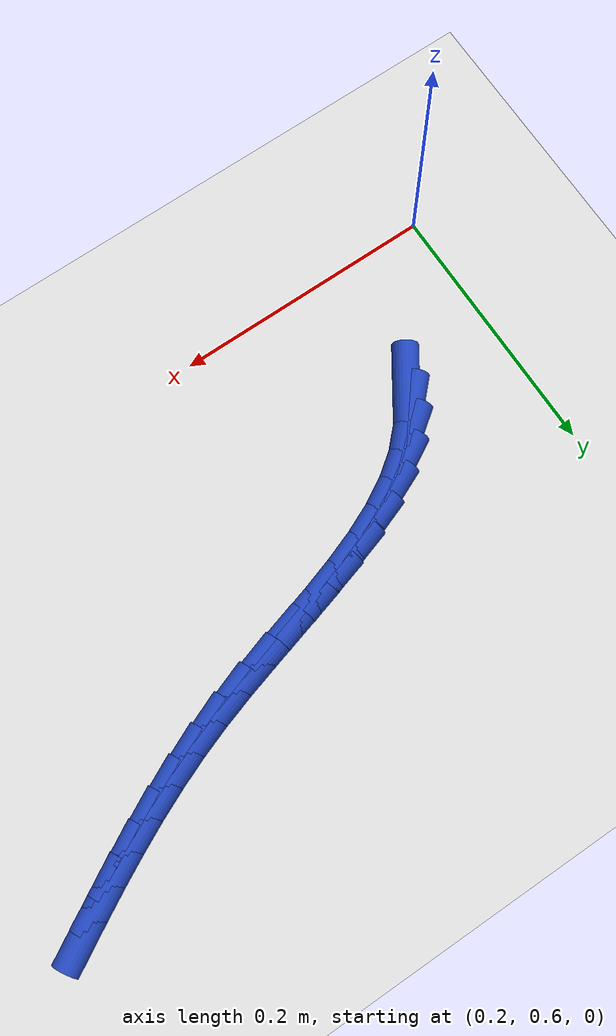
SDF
<sdf version="1.6">
 <world name="default">
  <model name="ground_plane">
   <static>1</static>
   <link name="link">
    <collision name="collision">
     <geometry><plane><normal>0 0 1</normal><size>100 100</size></plane></geometry>
     <surface><friction><ode><mu>100</mu><mu2>50</mu2></ode></friction></surface>
    </collision>
    <visual name="visual">
     <cast_shadows>0</cast_shadows>
     <geometry><plane><normal>0 0 1</normal><size>100 100</size></plane></geometry>
     <material>
      <script><uri>file://media/materials/scripts/gazebo.material</uri><name>Gazebo/WhiteGlow</name></script>
     </material>
    </visual>
   </link>
  </model>
  <model name="line">
   <link name="link_32">
    <pose>0.2849286676899588 0.7108674486640169 0.01 0 1.57 0.9824461670417258</pose>
    <collision name="collision">
     <geometry><cylinder><radius>0.01</radius><length>0.08</length></cylinder></geometry>
    </collision>
    <visual name="visual">
     <material>
      <script><name>Gazebo/Blue</name><uri>file://media/materials/scripts/gazebo.material</uri></script>
     </material>
     <geometry><cylinder><radius>0.01</radius><length>0.08</length></cylinder></geometry>
    </visual>
   </link>
   <link name="link_33">
    <pose>0.2970068009563321 0.7289710127238102 0.01 0 1.57 0.7990842123239231</pose>
    <collision name="collision">
     <geometry><cylinder><radius>0.01</radius><length>0.08</length></cylinder></geometry>
    </collision>
    <visual name="visual">
     <material>
      <script><name>Gazebo/Blue</name><uri>file://media/materials/scripts/gazebo.material</uri></script>
     </material>
     <geometry><cylinder><radius>0.01</radius><length>0.08</length></cylinder></geometry>
    </visual>
   </link>
   <link name="link_34">
    <pose>0.31219199923927293 0.7445776559701137 0.01 0 1.57 0.6400299945055045</pose>
    <collision name="collision">
     <geometry><cylinder><radius>0.01</radius><length>0.08</length></cylinder></geometry>
    </collision>
    <visual name="visual">
     <material>
      <script><name>Gazebo/Blue</name><uri>file://media/materials/scripts/gazebo.material</uri></script>
     </material>
     <geometry><cylinder><radius>0.01</radius><length>0.08</length></cylinder></geometry>
    </visual>
   </link>
   <link name="link_35">
    <pose>0.33016434578421305 0.7579596934832671 0.01 0 1.57 0.5146574287103698</pose>
    <collision name="collision">
     <geometry><cylinder><radius>0.01</radius><length>0.08</length></cylinder></geometry>
    </collision>
    <visual name="visual">
     <material>
      <script><name>Gazebo/Blue</name><uri>file://media/materials/scripts/gazebo.material</uri></script>
     </material>
     <geometry><cylinder><radius>0.01</radius><length>0.08</length></cylinder></geometry>
    </visual>
   </link>
   <link name="link_36">
    <pose>0.3505070365613898 0.7694632692117985 0.01 0 1.57 0.4205373354107007</pose>
    <collision name="collision">
     <geometry><cylinder><radius>0.01</radius><length>0.08</length></cylinder></geometry>
    </collision>
    <visual name="visual">
     <material>
      <script><name>Gazebo/Blue</name><uri>file://media/materials/scripts/gazebo.material</uri></script>
     </material>
     <geometry><cylinder><radius>0.01</radius><length>0.08</length></cylinder></geometry>
    </visual>
   </link>
   <link name="link_37">
    <pose>0.37280326754104104 0.779434527104236 0.01 0 1.57 0.3531572600027972</pose>
    <collision name="collision">
     <geometry><cylinder><radius>0.01</radius><length>0.08</length></cylinder></geometry>
    </collision>
    <visual name="visual">
     <material>
      <script><name>Gazebo/Blue</name><uri>file://media/materials/scripts/gazebo.material</uri></script>
     </material>
     <geometry><cylinder><radius>0.01</radius><length>0.08</length></cylinder></geometry>
    </visual>
   </link>
   <link name="link_38">
    <pose>0.39663623469340387 0.7882196111091078 0.01 0 1.57 0.3082527455395166</pose>
    <collision name="collision">
     <geometry><cylinder><radius>0.01</radius><length>0.08</length></cylinder></geometry>
    </collision>
    <visual name="visual">
     <material>
      <script><name>Gazebo/Blue</name><uri>file://media/materials/scripts/gazebo.material</uri></script>
     </material>
     <geometry><cylinder><radius>0.01</radius><length>0.08</length></cylinder></geometry>
    </visual>
   </link>
   <link name="link_39">
    <pose>0.42158913398871595 0.7961646651749416 0.01 0 1.57 0.28264999410802977</pose>
    <collision name="collision">
     <geometry><cylinder><radius>0.01</radius><length>0.08</length></cylinder></geometry>
    </collision>
    <visual name="visual">
     <material>
      <script><name>Gazebo/Blue</name><uri>file://media/materials/scripts/gazebo.material</uri></script>
     </material>
     <geometry><cylinder><radius>0.01</radius><length>0.08</length></cylinder></geometry>
    </visual>
   </link>
   <link name="link_40">
    <pose>0.4472451613972146 0.8036158332502654 0.01 0 1.57 0.27442247197472563</pose>
    <collision name="collision">
     <geometry><cylinder><radius>0.01</radius><length>0.08</length></cylinder></geometry>
    </collision>
    <visual name="visual">
     <material>
      <script><name>Gazebo/Blue</name><uri>file://media/materials/scripts/gazebo.material</uri></script>
     </material>
     <geometry><cylinder><radius>0.01</radius><length>0.08</length></cylinder></geometry>
    </visual>
   </link>
   <link name="link_41">
    <pose>0.4731875128891375 0.8109192592836074 0.01 0 1.57 0.2828428707488643</pose>
    <collision name="collision">
     <geometry><cylinder><radius>0.01</radius><length>0.08</length></cylinder></geometry>
    </collision>
    <visual name="visual">
     <material>
      <script><name>Gazebo/Blue</name><uri>file://media/materials/scripts/gazebo.material</uri></script>
     </material>
     <geometry><cylinder><radius>0.01</radius><length>0.08</length></cylinder></geometry>
    </visual>
   </link>
   <link name="link_42">
    <pose>0.498999384434722 0.8184210872234958 0.01 0 1.57 0.3083274060708118</pose>
    <collision name="collision">
     <geometry><cylinder><radius>0.01</radius><length>0.08</length></cylinder></geometry>
    </collision>
    <visual name="visual">
     <material>
      <script><name>Gazebo/Blue</name><uri>file://media/materials/scripts/gazebo.material</uri></script>
     </material>
     <geometry><cylinder><radius>0.01</radius><length>0.08</length></cylinder></geometry>
    </visual>
   </link>
   <link name="link_43">
    <pose>0.5242639720042056 0.8264674610184584 0.01 0 1.57 0.34894729370363314</pose>
    <collision name="collision">
     <geometry><cylinder><radius>0.01</radius><length>0.08</length></cylinder></geometry>
    </collision>
    <visual name="visual">
     <material>
      <script><name>Gazebo/Blue</name><uri>file://media/materials/scripts/gazebo.material</uri></script>
     </material>
     <geometry><cylinder><radius>0.01</radius><length>0.08</length></cylinder></geometry>
    </visual>
   </link>
   <link name="link_44">
    <pose>0.5486432866751864 0.835337532806083 0.01 0 1.57 0.3900678773051173</pose>
    <collision name="collision">
     <geometry><cylinder><radius>0.01</radius><length>0.08</length></cylinder></geometry>
    </collision>
    <visual name="visual">
     <material>
      <script><name>Gazebo/Blue</name><uri>file://media/materials/scripts/gazebo.material</uri></script>
     </material>
     <geometry><cylinder><radius>0.01</radius><length>0.08</length></cylinder></geometry>
    </visual>
   </link>
   <link name="link_45">
    <pose>0.5721582861386475 0.8450053547949373 0.01 0 1.57 0.4266675276720539</pose>
    <collision name="collision">
     <geometry><cylinder><radius>0.01</radius><length>0.08</length></cylinder></geometry>
    </collision>
    <visual name="visual">
     <material>
      <script><name>Gazebo/Blue</name><uri>file://media/materials/scripts/gazebo.material</uri></script>
     </material>
     <geometry><cylinder><radius>0.01</radius><length>0.08</length></cylinder></geometry>
    </visual>
   </link>
   <link name="link_46">
    <pose>0.5949320585295944 0.8553581696512762 0.01 0 1.57 0.45811593838444686</pose>
    <collision name="collision">
     <geometry><cylinder><radius>0.01</radius><length>0.08</length></cylinder></geometry>
    </collision>
    <visual name="visual">
     <material>
      <script><name>Gazebo/Blue</name><uri>file://media/materials/scripts/gazebo.material</uri></script>
     </material>
     <geometry><cylinder><radius>0.01</radius><length>0.08</length></cylinder></geometry>
    </visual>
   </link>
   <link name="link_47">
    <pose>0.6170876992434116 0.8662832138701294 0.01 0 1.57 0.4839062602346822</pose>
    <collision name="collision">
     <geometry><cylinder><radius>0.01</radius><length>0.08</length></cylinder></geometry>
    </collision>
    <visual name="visual">
     <material>
      <script><name>Gazebo/Blue</name><uri>file://media/materials/scripts/gazebo.material</uri></script>
     </material>
     <geometry><cylinder><radius>0.01</radius><length>0.08</length></cylinder></geometry>
    </visual>
   </link>
   <link name="link_48">
    <pose>0.6387483036754833 0.8776677239465248 0.01 0 1.57 0.5036523962917425</pose>
    <collision name="collision">
     <geometry><cylinder><radius>0.01</radius><length>0.08</length></cylinder></geometry>
    </collision>
    <visual name="visual">
     <material>
      <script><name>Gazebo/Blue</name><uri>file://media/materials/scripts/gazebo.material</uri></script>
     </material>
     <geometry><cylinder><radius>0.01</radius><length>0.08</length></cylinder></geometry>
    </visual>
   </link>
   <link name="link_49">
    <pose>0.660036967221194 0.8893989363754918 0.01 0 1.57 0.5170798331639326</pose>
    <collision name="collision">
     <geometry><cylinder><radius>0.01</radius><length>0.08</length></cylinder></geometry>
    </collision>
    <visual name="visual">
     <material>
      <script><name>Gazebo/Blue</name><uri>file://media/materials/scripts/gazebo.material</uri></script>
     </material>
     <geometry><cylinder><radius>0.01</radius><length>0.08</length></cylinder></geometry>
    </visual>
   </link>
  </model>
 </world>
</sdf>
